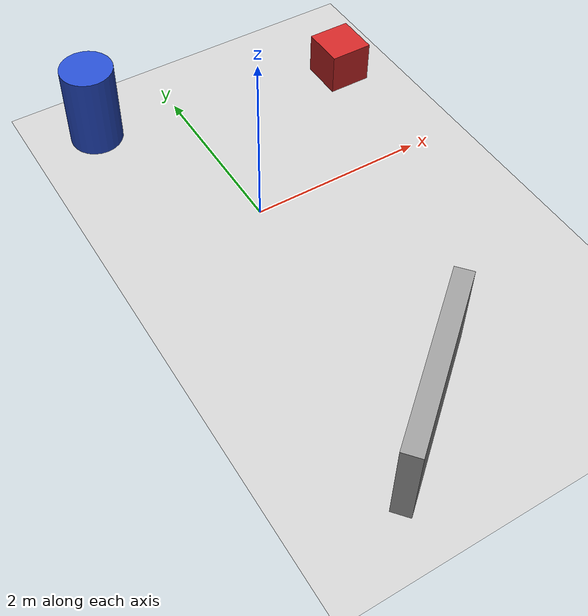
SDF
<?xml version="1.0" ?>
<sdf version="1.5">
  <world name="maze_world">
    <!-- Include standard world elements -->
    <include>
      <uri>model://sun</uri>
    </include>

    <!-- Ground plane -->
    <include>
      <uri>model://ground_plane</uri>
    </include>

    <!-- Import your map from maze.yaml - this will be managed by the map_server separately -->
    <!-- The obstacles below will be additional to your map -->

    <!-- Obstacle 1: Box -->
    <model name="obstacle_box">
      <pose>2.0 1.5 0.25 0 0 0</pose>
      <static>true</static>
      <link name="link">
        <collision name="collision">
          <geometry>
            <box>
              <size>0.5 0.5 0.5</size>
            </box>
          </geometry>
        </collision>
        <visual name="visual">
          <geometry>
            <box>
              <size>0.5 0.5 0.5</size>
            </box>
          </geometry>
          <material>
            <script>
              <uri>file://media/materials/scripts/gazebo.material</uri>
              <name>Gazebo/Red</name>
            </script>
          </material>
        </visual>
      </link>
    </model>

    <!-- Obstacle 2: Cylinder -->
    <model name="obstacle_cylinder">
      <pose>-1.0 2.0 0.5 0 0 0</pose>
      <static>true</static>
      <link name="link">
        <collision name="collision">
          <geometry>
            <cylinder>
              <radius>0.3</radius>
              <length>1.0</length>
            </cylinder>
          </geometry>
        </collision>
        <visual name="visual">
          <geometry>
            <cylinder>
              <radius>0.3</radius>
              <length>1.0</length>
            </cylinder>
          </geometry>
          <material>
            <script>
              <uri>file://media/materials/scripts/gazebo.material</uri>
              <name>Gazebo/Blue</name>
            </script>
          </material>
        </visual>
      </link>
    </model>

    <!-- Obstacle 3: Wall -->
    <model name="wall_obstacle">
      <pose>0.0 -3.0 0.5 0 0 0.7</pose>
      <static>true</static>
      <link name="link">
        <collision name="collision">
          <geometry>
            <box>
              <size>2.0 0.2 1.0</size>
            </box>
          </geometry>
        </collision>
        <visual name="visual">
          <geometry>
            <box>
              <size>2.0 0.2 1.0</size>
            </box>
          </geometry>
          <material>
            <script>
              <uri>file://media/materials/scripts/gazebo.material</uri>
              <name>Gazebo/Grey</name>
            </script>
          </material>
        </visual>
      </link>
    </model>
  </world>
</sdf>
